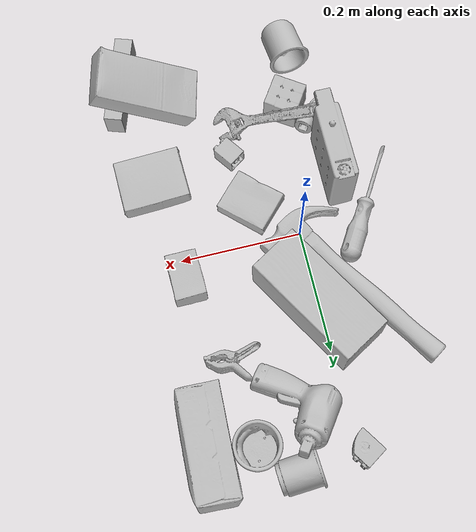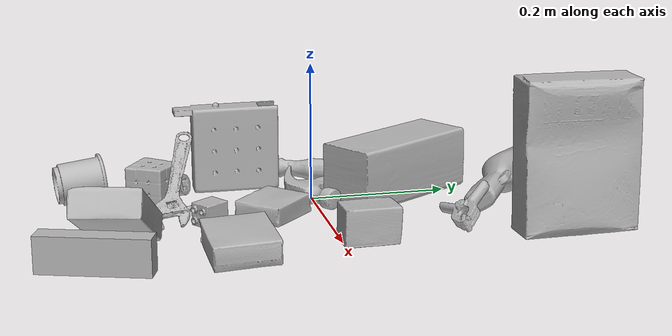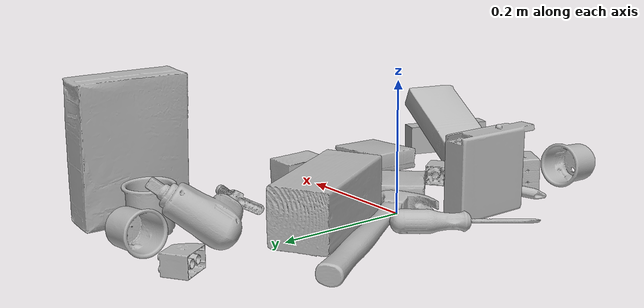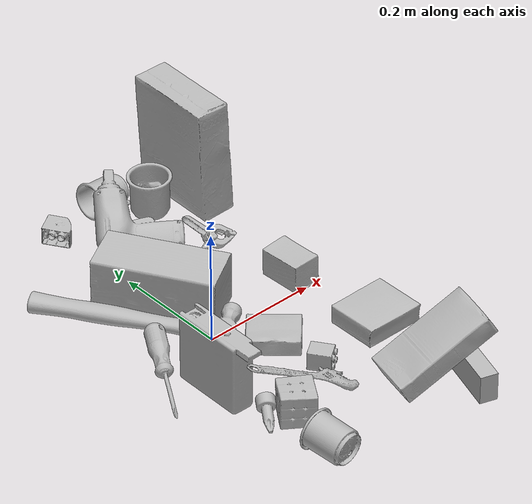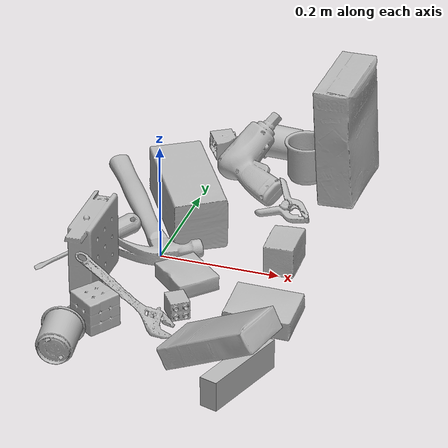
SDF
<sdf version="1.4">
  <world name="default">
    <light name="light1" type="point">
      <pose>0 0 1 0 0 0</pose>
      <diffuse>3 3 3 1</diffuse>
      <specular>3 3 3 1</specular>
    </light>
    <light name="light2" type="point">
      <pose>0 0.5 2 0 0 0</pose>
      <diffuse>1 1 1 1</diffuse>
      <specular>1 1 1 1</specular>
    </light>
    <light name="light3" type="point">
      <pose>0 0.5 2 0 0 0</pose>
      <diffuse>3 3 3 1</diffuse>
      <specular>3 3 3 1</specular>
    </light>
    <scene>
      <ambient>0.7 0.7 0.7</ambient>
    </scene>
    <model name="box21">
      <link name="link_box21">
        <collision name="default">
          <geometry>
            <mesh>
              <uri>model://cracker_box/collision_meshes/collision.obj</uri>
              <scale>1.0 1.0 1.0</scale>
            </mesh>
          </geometry>
          <surface>
            <friction>
              <ode>
                <mu>0.5</mu>
                <mu2>0.5</mu2>
              </ode>
            </friction>
          <contact>
        <ode>
            <max_vel>0</max_vel>
            <min_depth>0.0001</min_depth>
            <kp>1e8</kp>
        </ode>
    </contact></surface>
        </collision>
        <visual name="default">
          <geometry>
            <mesh>
              <uri>model://cracker_box/visual_meshes/visual.dae</uri>
              <scale>1.0 1.0 1.0</scale>
            </mesh>
          </geometry>
        </visual>
        <inertial>
          <mass>2.732837677001953</mass>
          <pose>0.000946416228543967 0.0002543424488976598 -0.0017029533628374338 -0.00031620734042352985 -0.011106490532052917 0.002546795466230165</pose>
          <inertia>
            <ixx>0.0069511193</ixx>
            <iyy>0.011477663</iyy>
            <izz>0.01637968</izz>
            <ixy>0</ixy>
            <ixz>0</ixz>
            <iyz>0</iyz>
          </inertia>
        </inertial>
      </link>
      <pose>0.22207899391651154 0.31602805852890015 0.10730632394552231 -0.04246310947422945 1.529496922522004 -0.060430159619852666</pose>
    </model>
    <model name="box22">
      <link name="link_box22">
        <collision name="default">
          <geometry>
            <mesh>
              <uri>model://jenga/collision_meshes/collision.obj</uri>
              <scale>1.0 1.0 1.0</scale>
            </mesh>
          </geometry>
          <surface>
            <friction>
              <ode>
                <mu>0.5</mu>
                <mu2>0.5</mu2>
              </ode>
            </friction>
          <contact>
        <ode>
            <max_vel>0</max_vel>
            <min_depth>0.0001</min_depth>
            <kp>1e8</kp>
        </ode>
    </contact></surface>
        </collision>
        <visual name="default">
          <geometry>
            <mesh>
              <uri>model://jenga/visual_meshes/visual.dae</uri>
              <scale>1.0 1.0 1.0</scale>
            </mesh>
          </geometry>
        </visual>
        <inertial>
          <mass>0.1563216596841812</mass>
          <pose>-2.502855807051674e-07 -0.00010250010382151231 -4.0923401684267446e-05 0.0 -7.34215461761844e-07 0.0</pose>
          <inertia>
            <ixx>4.3258e-05</ixx>
            <iyy>0.000293115</iyy>
            <izz>0.0003129252</izz>
            <ixy>0</ixy>
            <ixz>0</ixz>
            <iyz>0</iyz>
          </inertia>
        </inertial>
      </link>
      <pose>0.23494666814804077 -0.32383280992507935 0.024701127782464027 1.5775869839451537 -3.951718837844252e-05 -1.8882531811970376</pose>
    </model>
    <model name="box23">
      <link name="link_box23">
        <collision name="default">
          <geometry>
            <mesh>
              <uri>model://pudding_box/collision_meshes/collision.obj</uri>
              <scale>1.0 1.0 1.0</scale>
            </mesh>
          </geometry>
          <surface>
            <friction>
              <ode>
                <mu>0.5</mu>
                <mu2>0.5</mu2>
              </ode>
            </friction>
          <contact>
        <ode>
            <max_vel>0</max_vel>
            <min_depth>0.0001</min_depth>
            <kp>1e8</kp>
        </ode>
    </contact></surface>
        </collision>
        <visual name="default">
          <geometry>
            <mesh>
              <uri>model://pudding_box/visual_meshes/visual.dae</uri>
              <scale>1.0 1.0 1.0</scale>
            </mesh>
          </geometry>
        </visual>
        <inertial>
          <mass>0.32993465662002563</mass>
          <pose>0.0004894821904599667 0.0008067885064519942 -0.0005188827635720372 0.005213102236317791 -0.0066038015122011 0.020079823288174207</pose>
          <inertia>
            <ixx>0.00037297411</ixx>
            <iyy>0.00025093966</iyy>
            <izz>0.0005507938</izz>
            <ixy>0</ixy>
            <ixz>0</ixz>
            <iyz>0</iyz>
          </inertia>
        </inertial>
      </link>
      <pose>0.21800221502780914 -0.13936389982700348 0.01972581073641777 0.02234868425729203 -0.011391616512948548 1.6009635478601614</pose>
    </model>
    <model name="cup1">
      <link name="link_cup1">
        <collision name="default">
          <geometry>
            <mesh>
              <uri>model://c_cups/collision_meshes/collision.obj</uri>
              <scale>1.0 1.0 1.0</scale>
            </mesh>
          </geometry>
          <surface>
            <friction>
              <ode>
                <mu>0.5</mu>
                <mu2>0.5</mu2>
              </ode>
            </friction>
          <contact>
        <ode>
            <max_vel>0</max_vel>
            <min_depth>0.0001</min_depth>
            <kp>1e8</kp>
        </ode>
    </contact></surface>
        </collision>
        <visual name="default">
          <geometry>
            <mesh>
              <uri>model://c_cups/visual_meshes/visual.dae</uri>
              <scale>1.0 1.0 1.0</scale>
            </mesh>
          </geometry>
        </visual>
        <inertial>
          <mass>0.05159630998969078</mass>
          <pose>0.0007237254758365452 0.0020153908990323544 -0.001275097718462348 0.3021575981944983 0.01346171900925468 -0.08771841488334552</pose>
          <inertia>
            <ixx>3.8371487e-05</ixx>
            <iyy>3.7693397e-05</iyy>
            <izz>3.3934528e-05</izz>
            <ixy>0</ixy>
            <ixz>0</ixz>
            <iyz>0</iyz>
          </inertia>
        </inertial>
      </link>
      <pose>0.09613911807537079 0.3738608658313751 0.030166083946824074 -1.4800761949755568 -0.5372088973631609 1.593202658475277</pose>
    </model>
    <model name="cup2">
      <link name="link_cup2">
        <collision name="default">
          <geometry>
            <mesh>
              <uri>model://d_cups/collision_meshes/collision.obj</uri>
              <scale>1.0 1.0 1.0</scale>
            </mesh>
          </geometry>
          <surface>
            <friction>
              <ode>
                <mu>0.5</mu>
                <mu2>0.5</mu2>
              </ode>
            </friction>
          <contact>
        <ode>
            <max_vel>0</max_vel>
            <min_depth>0.0001</min_depth>
            <kp>1e8</kp>
        </ode>
    </contact></surface>
        </collision>
        <visual name="default">
          <geometry>
            <mesh>
              <uri>model://d_cups/visual_meshes/visual.dae</uri>
              <scale>1.0 1.0 1.0</scale>
            </mesh>
          </geometry>
        </visual>
        <inertial>
          <mass>0.029099034145474434</mass>
          <pose>0.0008068051538430154 0.0019117402844130993 -0.0022666510194540024 0.24013101341738077 -0.2470893725106806 0.5942204262094062</pose>
          <inertia>
            <ixx>2.436274e-05</ixx>
            <iyy>2.429223e-05</iyy>
            <izz>2.2052422e-05</izz>
            <ixy>0</ixy>
            <ixz>0</ixz>
            <iyz>0</iyz>
          </inertia>
        </inertial>
      </link>
      <pose>-0.052280768752098083 -0.3291110098361969 0.03246286138892174 -1.4724588038825868 0.46235239956356483 0.16295146871668978</pose>
    </model>
    <model name="box11">
      <link name="link_box11">
        <collision name="default">
          <geometry>
            <mesh>
              <uri>model://sugar_box/collision_meshes/collision.obj</uri>
              <scale>1.0 1.0 1.0</scale>
            </mesh>
          </geometry>
          <surface>
            <friction>
              <ode>
                <mu>0.5</mu>
                <mu2>0.5</mu2>
              </ode>
            </friction>
          <contact>
        <ode>
            <max_vel>0</max_vel>
            <min_depth>0.0001</min_depth>
            <kp>1e8</kp>
        </ode>
    </contact></surface>
        </collision>
        <visual name="default">
          <geometry>
            <mesh>
              <uri>model://sugar_box/visual_meshes/visual.dae</uri>
              <scale>1.0 1.0 1.0</scale>
            </mesh>
          </geometry>
        </visual>
        <inertial>
          <mass>0.6083751916885376</mass>
          <pose>0.0010343727190047503 3.849109634757042e-05 -0.00036364805418998003 -0.00040462662026216373 0.00105066363904409 0.002615379021562279</pose>
          <inertia>
            <ixx>0.0005068966</ixx>
            <iyy>0.0016383935</iyy>
            <izz>0.0019613528</izz>
            <ixy>0</ixy>
            <ixz>0</ixz>
            <iyz>0</iyz>
          </inertia>
        </inertial>
      </link>
      <pose>0.19532576203346252 -0.29260608553886414 0.05791264772415161 3.134756680245468 -0.4898256798778118 -0.23576387775456928</pose>
    </model>
    <model name="box12">
      <link name="link_box12">
        <collision name="default">
          <geometry>
            <mesh>
              <uri>model://wood_block/collision_meshes/collision.obj</uri>
              <scale>1.0 1.0 1.0</scale>
            </mesh>
          </geometry>
          <surface>
            <friction>
              <ode>
                <mu>0.5</mu>
                <mu2>0.5</mu2>
              </ode>
            </friction>
          <contact>
        <ode>
            <max_vel>0</max_vel>
            <min_depth>0.0001</min_depth>
            <kp>1e8</kp>
        </ode>
    </contact></surface>
        </collision>
        <visual name="default">
          <geometry>
            <mesh>
              <uri>model://wood_block/visual_meshes/visual.dae</uri>
              <scale>1.0 1.0 1.0</scale>
            </mesh>
          </geometry>
        </visual>
        <inertial>
          <mass>1.904224157333374</mass>
          <pose>-5.813315510749817e-06 -0.000570809468626976 0.0002640858292579651 -0.05220878944738684 -0.005192694452018099 -0.006861378422653873</pose>
          <inertia>
            <ixx>0.00254814</ixx>
            <iyy>0.008049577</iyy>
            <izz>0.008019466</izz>
            <ixy>0</ixy>
            <ixz>0</ixz>
            <iyz>0</iyz>
          </inertia>
        </inertial>
      </link>
      <pose>0.004392073955386877 0.12531962990760803 0.04570065811276436 1.5681303930493113 -0.006938941614632061 2.112270131767524</pose>
    </model>
    <model name="box13">
      <link name="link_box13">
        <collision name="default">
          <geometry>
            <mesh>
              <uri>model://gelatin_box/collision_meshes/collision.obj</uri>
              <scale>1.0 1.0 1.0</scale>
            </mesh>
          </geometry>
          <surface>
            <friction>
              <ode>
                <mu>0.5</mu>
                <mu2>0.5</mu2>
              </ode>
            </friction>
          <contact>
        <ode>
            <max_vel>0</max_vel>
            <min_depth>0.0001</min_depth>
            <kp>1e8</kp>
        </ode>
    </contact></surface>
        </collision>
        <visual name="default">
          <geometry>
            <mesh>
              <uri>model://gelatin_box/visual_meshes/visual.dae</uri>
              <scale>1.0 1.0 1.0</scale>
            </mesh>
          </geometry>
        </visual>
        <inertial>
          <mass>0.15982484817504883</mass>
          <pose>0.0004319618456065655 0.00011156871187267825 -0.0003640321083366871 -0.001050372093012012 -0.00475581868936722 0.016440559471878533</pose>
          <inertia>
            <ixx>0.000112823305</ixx>
            <iyy>8.0589096e-05</iyy>
            <izz>0.0001717422</izz>
            <ixy>0</ixy>
            <ixz>0</ixz>
            <iyz>0</iyz>
          </inertia>
        </inertial>
      </link>
      <pose>0.06723880022764206 -0.06816933304071426 0.015168316662311554 0.005597466102735957 -0.00730459299415198 -2.332897500129391</pose>
    </model>
    <model name="box14">
      <link name="link_box14">
        <collision name="default">
          <geometry>
            <mesh>
              <uri>model://rubiks_cube/collision_meshes/collision.obj</uri>
              <scale>1.0 1.0 1.0</scale>
            </mesh>
          </geometry>
          <surface>
            <friction>
              <ode>
                <mu>0.5</mu>
                <mu2>0.5</mu2>
              </ode>
            </friction>
          <contact>
        <ode>
            <max_vel>0</max_vel>
            <min_depth>0.0001</min_depth>
            <kp>1e8</kp>
        </ode>
    </contact></surface>
        </collision>
        <visual name="default">
          <geometry>
            <mesh>
              <uri>model://rubiks_cube/visual_meshes/visual.dae</uri>
              <scale>1.0 1.0 1.0</scale>
            </mesh>
          </geometry>
        </visual>
        <inertial>
          <mass>0.19606205821037292</mass>
          <pose>2.6721043468569405e-05 5.256967051536776e-05 -7.264316536748083e-06 -0.05467227514375443 -0.09814085307594407 -0.03445353526761094</pose>
          <inertia>
            <ixx>0.00010833746</ixx>
            <iyy>0.000107832224</iyy>
            <izz>0.00010923522</izz>
            <ixy>0</ixy>
            <ixz>0</ixz>
            <iyz>0</iyz>
          </inertia>
        </inertial>
      </link>
      <pose>-0.03022003173828125 -0.2269328087568283 0.02927342616021633 1.5698560284898424 -0.021678853590355353 -2.1664697641518353</pose>
    </model>
    <model name="cup15">
      <link name="link_cup15">
        <collision name="default">
          <geometry>
            <mesh>
              <uri>model://e_cups/collision_meshes/collision.obj</uri>
              <scale>1.0 1.0 1.0</scale>
            </mesh>
          </geometry>
          <surface>
            <friction>
              <ode>
                <mu>0.5</mu>
                <mu2>0.5</mu2>
              </ode>
            </friction>
          <contact>
        <ode>
            <max_vel>0</max_vel>
            <min_depth>0.0001</min_depth>
            <kp>1e8</kp>
        </ode>
    </contact></surface>
        </collision>
        <visual name="default">
          <geometry>
            <mesh>
              <uri>model://e_cups/visual_meshes/visual.dae</uri>
              <scale>1.0 1.0 1.0</scale>
            </mesh>
          </geometry>
        </visual>
        <inertial>
          <mass>0.09305236488580704</mass>
          <pose>0.0011355740716680884 0.0028797851409763098 -0.003882972989231348 0.6952374393777071 0.08767548394821409 -0.5235242886817723</pose>
          <inertia>
            <ixx>8.204892e-05</ixx>
            <iyy>8.5752865e-05</iyy>
            <izz>7.844823e-05</izz>
            <ixy>0</ixy>
            <ixz>0</ixz>
            <iyz>0</iyz>
          </inertia>
        </inertial>
      </link>
      <pose>0.14974190294742584 0.32213783264160156 0.035582706332206726 0.008881581510292941 -0.011238068162925153 -1.6750088821727296</pose>
    </model>
    <model name="toy1">
      <link name="link_toy1">
        <collision name="default">
          <geometry>
            <mesh>
              <uri>model://foam_brick/collision_meshes/collision.obj</uri>
              <scale>1.0 1.0 1.0</scale>
            </mesh>
          </geometry>
          <surface>
            <friction>
              <ode>
                <mu>0.5</mu>
                <mu2>0.5</mu2>
              </ode>
            </friction>
          <contact>
        <ode>
            <max_vel>0</max_vel>
            <min_depth>0.0001</min_depth>
            <kp>1e8</kp>
        </ode>
    </contact></surface>
        </collision>
        <visual name="default">
          <geometry>
            <mesh>
              <uri>model://foam_brick/visual_meshes/visual.dae</uri>
              <scale>1.0 1.0 1.0</scale>
            </mesh>
          </geometry>
        </visual>
        <inertial>
          <mass>0.27397871017456055</mass>
          <pose>-0.0002522472059354186 0.0003458441060502082 -0.00025321010616607964 -0.2940210021807357 0.01727444677850634 -0.0007449878009638903</pose>
          <inertia>
            <ixx>0.00011967903</ixx>
            <iyy>0.00019107372</iyy>
            <izz>0.00019350204</izz>
            <ixy>0</ixy>
            <ixz>0</ixz>
            <iyz>0</iyz>
          </inertia>
        </inertial>
      </link>
      <pose>0.19764526188373566 0.03623714670538902 0.025496840476989746 3.132508452570759 0.006607226527480731 1.6052898518238479</pose>
    </model>
    <model name="toy2">
      <link name="link_toy2">
        <collision name="default">
          <geometry>
            <mesh>
              <uri>model://b_toy_airplane/collision_meshes/collision.obj</uri>
              <scale>1.0 1.0 1.0</scale>
            </mesh>
          </geometry>
          <surface>
            <friction>
              <ode>
                <mu>0.5</mu>
                <mu2>0.5</mu2>
              </ode>
            </friction>
          <contact>
        <ode>
            <max_vel>0</max_vel>
            <min_depth>0.0001</min_depth>
            <kp>1e8</kp>
        </ode>
    </contact></surface>
        </collision>
        <visual name="default">
          <geometry>
            <mesh>
              <uri>model://b_toy_airplane/visual_meshes/visual.dae</uri>
              <scale>1.0 1.0 1.0</scale>
            </mesh>
          </geometry>
        </visual>
        <inertial>
          <mass>0.24932990968227386</mass>
          <pose>0.005081362556666136 0.004015582613646984 0.00954306498169899 -0.04001809188182278 -0.04022184417958596 -0.5601502893643007</pose>
          <inertia>
            <ixx>0.0004628856</ixx>
            <iyy>0.00018501986</iyy>
            <izz>0.00057587575</izz>
            <ixy>0</ixy>
            <ixz>0</ixz>
            <iyz>0</iyz>
          </inertia>
        </inertial>
      </link>
      <pose>0.06756159663200378 0.27929797768592834 0.028540704399347305 0.11645503927989283 -0.5991177254909886 0.9360484915379275</pose>
    </model>
    <model name="toy3">
      <link name="link_toy3">
        <collision name="default">
          <geometry>
            <mesh>
              <uri>model://f_lego_duplo/collision_meshes/collision.obj</uri>
              <scale>1.0 1.0 1.0</scale>
            </mesh>
          </geometry>
          <surface>
            <friction>
              <ode>
                <mu>0.5</mu>
                <mu2>0.5</mu2>
              </ode>
            </friction>
          <contact>
        <ode>
            <max_vel>0</max_vel>
            <min_depth>0.0001</min_depth>
            <kp>1e8</kp>
        </ode>
    </contact></surface>
        </collision>
        <visual name="default">
          <geometry>
            <mesh>
              <uri>model://f_lego_duplo/visual_meshes/visual.dae</uri>
              <scale>1.0 1.0 1.0</scale>
            </mesh>
          </geometry>
        </visual>
        <inertial>
          <mass>0.027739444747567177</mass>
          <pose>2.369416324654594e-05 0.00013393194240052253 0.0018837876850739121 0.02983859902212722 -0.014425048030447486 -0.6756637170693943</pose>
          <inertia>
            <ixx>5.8614983e-06</ixx>
            <iyy>5.913718e-06</iyy>
            <izz>5.0880294e-06</izz>
            <ixy>0</ixy>
            <ixz>0</ixz>
            <iyz>0</iyz>
          </inertia>
        </inertial>
      </link>
      <pose>0.08363267034292221 -0.16143228113651276 0.016207214444875717 1.5789802352339435 0.00016320238518875124 0.6208987291388506</pose>
    </model>
    <model name="toy4">
      <link name="link_toy4">
        <collision name="default">
          <geometry>
            <mesh>
              <uri>model://d_toy_airplane/collision_meshes/collision.obj</uri>
              <scale>1.0 1.0 1.0</scale>
            </mesh>
          </geometry>
          <surface>
            <friction>
              <ode>
                <mu>0.5</mu>
                <mu2>0.5</mu2>
              </ode>
            </friction>
          <contact>
        <ode>
            <max_vel>0</max_vel>
            <min_depth>0.0001</min_depth>
            <kp>1e8</kp>
        </ode>
    </contact></surface>
        </collision>
        <visual name="default">
          <geometry>
            <mesh>
              <uri>model://d_toy_airplane/visual_meshes/visual.dae</uri>
              <scale>1.0 1.0 1.0</scale>
            </mesh>
          </geometry>
        </visual>
        <inertial>
          <mass>0.018694162368774414</mass>
          <pose>9.410315396962687e-05 -5.80932610318996e-05 -0.011728095822036266 0.0002670379770250361 0.004678992469792915 0.5194762078456472</pose>
          <inertia>
            <ixx>5.6041463e-06</ixx>
            <iyy>5.6083722e-06</iyy>
            <izz>1.6919282e-06</izz>
            <ixy>0</ixy>
            <ixz>0</ixz>
            <iyz>0</iyz>
          </inertia>
        </inertial>
      </link>
      <pose>-0.06797567754983902 -0.20421430468559265 0.011044332757592201 -2.4193268233903895 -1.263893248435075 -2.915016137695282</pose>
    </model>
    <model name="toy5">
      <link name="link_toy5">
        <collision name="default">
          <geometry>
            <mesh>
              <uri>model://d_lego_duplo/collision_meshes/collision.obj</uri>
              <scale>1.0 1.0 1.0</scale>
            </mesh>
          </geometry>
          <surface>
            <friction>
              <ode>
                <mu>0.5</mu>
                <mu2>0.5</mu2>
              </ode>
            </friction>
          <contact>
        <ode>
            <max_vel>0</max_vel>
            <min_depth>0.0001</min_depth>
            <kp>1e8</kp>
        </ode>
    </contact></surface>
        </collision>
        <visual name="default">
          <geometry>
            <mesh>
              <uri>model://d_lego_duplo/visual_meshes/visual.dae</uri>
              <scale>1.0 1.0 1.0</scale>
            </mesh>
          </geometry>
        </visual>
        <inertial>
          <mass>0.04560890793800354</mass>
          <pose>0.0028305635787546635 0.00016366137424483895 0.0008589806966483593 0.08010848326521293 -0.38355231288211744 0.0010296590748680565</pose>
          <inertia>
            <ixx>8.829212e-06</ixx>
            <iyy>1.253105e-05</iyy>
            <izz>1.2084434e-05</izz>
            <ixy>0</ixy>
            <ixz>0</ixz>
            <iyz>0</iyz>
          </inertia>
        </inertial>
      </link>
      <pose>-0.008381474763154984 0.361868292093277 0.016249649226665497 1.5793365332418916 -0.013120054376736289 2.146868379160628</pose>
    </model>
    <model name="toy6">
      <link name="link_toy6">
        <collision name="default">
          <geometry>
            <mesh>
              <uri>model://nine_hole_peg_test/collision_meshes/collision.obj</uri>
              <scale>1.0 1.0 1.0</scale>
            </mesh>
          </geometry>
          <surface>
            <friction>
              <ode>
                <mu>0.5</mu>
                <mu2>0.5</mu2>
              </ode>
            </friction>
          <contact>
        <ode>
            <max_vel>0</max_vel>
            <min_depth>0.0001</min_depth>
            <kp>1e8</kp>
        </ode>
    </contact></surface>
        </collision>
        <visual name="default">
          <geometry>
            <mesh>
              <uri>model://nine_hole_peg_test/visual_meshes/visual.dae</uri>
              <scale>1.0 1.0 1.0</scale>
            </mesh>
          </geometry>
        </visual>
        <inertial>
          <mass>0.9848376512527466</mass>
          <pose>-0.004617386031895876 -0.009647614322602749 2.646068787726108e-05 -0.0014666785927196467 0.0007194180015025765 -0.6342414580933873</pose>
          <inertia>
            <ixx>0.0015399556</ixx>
            <iyy>0.0014378404</iyy>
            <izz>0.0026984566</izz>
            <ixy>0</ixy>
            <ixz>0</ixz>
            <iyz>0</iyz>
          </inertia>
        </inertial>
      </link>
      <pose>-0.07922264188528061 -0.10972065478563309 0.06864646822214127 -1.5293025654970434 -1.5638009786768239 -1.6122543788317487</pose>
    </model>
    <model name="hardware1">
      <link name="link_hardware1">
        <collision name="default">
          <geometry>
            <mesh>
              <uri>model://hammer/collision_meshes/collision.obj</uri>
              <scale>1.0 1.0 1.0</scale>
            </mesh>
          </geometry>
          <surface>
            <friction>
              <ode>
                <mu>0.5</mu>
                <mu2>0.5</mu2>
              </ode>
            </friction>
          <contact>
        <ode>
            <max_vel>0</max_vel>
            <min_depth>0.0001</min_depth>
            <kp>1e8</kp>
        </ode>
    </contact></surface>
        </collision>
        <visual name="default">
          <geometry>
            <mesh>
              <uri>model://hammer/visual_meshes/visual.dae</uri>
              <scale>1.0 1.0 1.0</scale>
            </mesh>
          </geometry>
        </visual>
        <inertial>
          <mass>0.19812075793743134</mass>
          <pose>0.009415780194103718 -0.011892358772456646 -0.00012350631004665047 0.023155553199567438 -0.004792165144826806 -0.012760319769687977</pose>
          <inertia>
            <ixx>8.4865314e-05</ixx>
            <iyy>0.0022996028</iyy>
            <izz>0.0023654876</izz>
            <ixy>0</ixy>
            <ixz>0</ixz>
            <iyz>0</iyz>
          </inertia>
        </inertial>
      </link>
      <pose>-0.07305429875850677 0.0948524996638298 0.014978247694671154 3.1237680661274583 -0.005048192986872981 -0.9872969631271605</pose>
    </model>
    <model name="hardware2">
      <link name="link_hardware2">
        <collision name="default">
          <geometry>
            <mesh>
              <uri>model://medium_clamp/collision_meshes/collision.obj</uri>
              <scale>1.0 1.0 1.0</scale>
            </mesh>
          </geometry>
          <surface>
            <friction>
              <ode>
                <mu>0.5</mu>
                <mu2>0.5</mu2>
              </ode>
            </friction>
          <contact>
        <ode>
            <max_vel>0</max_vel>
            <min_depth>0.0001</min_depth>
            <kp>1e8</kp>
        </ode>
    </contact></surface>
        </collision>
        <visual name="default">
          <geometry>
            <mesh>
              <uri>model://medium_clamp/visual_meshes/visual.dae</uri>
              <scale>1.0 1.0 1.0</scale>
            </mesh>
          </geometry>
        </visual>
        <inertial>
          <mass>0.022759946063160896</mass>
          <pose>0.005390991922467947 0.00039532387745566666 -0.0001222159044118598 -0.0012269199415174078 0.0025845019151957355 0.03820777718195871</pose>
          <inertia>
            <ixx>6.200628e-06</ixx>
            <iyy>9.023669e-06</iyy>
            <izz>1.3899154e-05</izz>
            <ixy>0</ixy>
            <ixz>0</ixz>
            <iyz>0</iyz>
          </inertia>
        </inertial>
      </link>
      <pose>0.1557827740907669 0.18296869099140167 0.020036745816469193 0.5632383749564744 0.24715825166172203 -0.2772256849895276</pose>
    </model>
    <model name="hardware3">
      <link name="link_hardware3">
        <collision name="default">
          <geometry>
            <mesh>
              <uri>model://flat_screwdriver/collision_meshes/collision.obj</uri>
              <scale>1.0 1.0 1.0</scale>
            </mesh>
          </geometry>
          <surface>
            <friction>
              <ode>
                <mu>0.5</mu>
                <mu2>0.5</mu2>
              </ode>
            </friction>
          <contact>
        <ode>
            <max_vel>0</max_vel>
            <min_depth>0.0001</min_depth>
            <kp>1e8</kp>
        </ode>
    </contact></surface>
        </collision>
        <visual name="default">
          <geometry>
            <mesh>
              <uri>model://flat_screwdriver/visual_meshes/visual.dae</uri>
              <scale>1.0 1.0 1.0</scale>
            </mesh>
          </geometry>
        </visual>
        <inertial>
          <mass>0.09131896495819092</mass>
          <pose>-0.0489187091588974 -0.0006576800951734185 -0.0006140916375443339 -0.5615616021105532 -0.003233725851923771 0.0069822762955213</pose>
          <inertia>
            <ixx>1.0789267e-05</ixx>
            <iyy>0.00013697217</iyy>
            <izz>0.00013690875</izz>
            <ixy>0</ixy>
            <ixz>0</ixz>
            <iyz>0</iyz>
          </inertia>
        </inertial>
      </link>
      <pose>-0.11686313152313232 -0.023048490285873413 0.014899615198373795 -0.847217871946881 0.03782472870720808 -2.1243385075632526</pose>
    </model>
    <model name="hardware4">
      <link name="link_hardware4">
        <collision name="default">
          <geometry>
            <mesh>
              <uri>model://adjustable_wrench/collision_meshes/collision.obj</uri>
              <scale>1.0 1.0 1.0</scale>
            </mesh>
          </geometry>
          <surface>
            <friction>
              <ode>
                <mu>0.5</mu>
                <mu2>0.5</mu2>
              </ode>
            </friction>
          <contact>
        <ode>
            <max_vel>0</max_vel>
            <min_depth>0.0001</min_depth>
            <kp>1e8</kp>
        </ode>
    </contact></surface>
        </collision>
        <visual name="default">
          <geometry>
            <mesh>
              <uri>model://adjustable_wrench/visual_meshes/visual.dae</uri>
              <scale>1.0 1.0 1.0</scale>
            </mesh>
          </geometry>
        </visual>
        <inertial>
          <mass>0.023054517805576324</mass>
          <pose>0.03740980476140976 -0.0028968877159059048 -0.0011149226920679212 -0.01447335734168526 0.006656027895675122 -0.010954173130845575</pose>
          <inertia>
            <ixx>4.7184403e-06</ixx>
            <iyy>5.5223813e-05</iyy>
            <izz>5.969163e-05</izz>
            <ixy>0</ixy>
            <ixz>0</ixz>
            <iyz>0</iyz>
          </inertia>
        </inertial>
      </link>
      <pose>0.0123171117156744 -0.1956709772348404 0.04360136389732361 -0.1386514612706401 0.44958345796755167 -0.2944798509912977</pose>
    </model>
  <physics type="ode">
      <max_contacts>50</max_contacts>
      <ode>
        <solver>
          <type>quick</type>
          <iters>75</iters>
        </solver>
        <constraints>
          <contact_max_correcting_vel>0</contact_max_correcting_vel>
          <contact_surface_layer>0</contact_surface_layer>
        </constraints>
      </ode>
    </physics></world>
</sdf>
